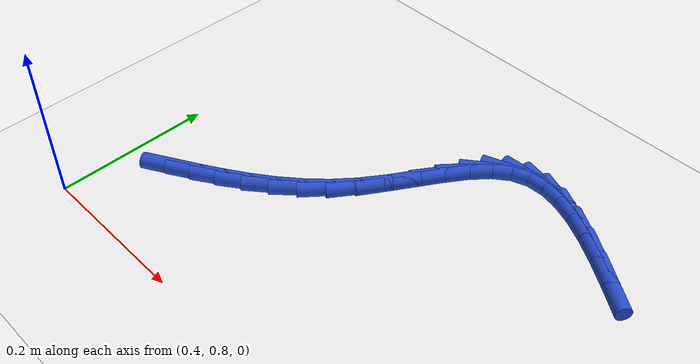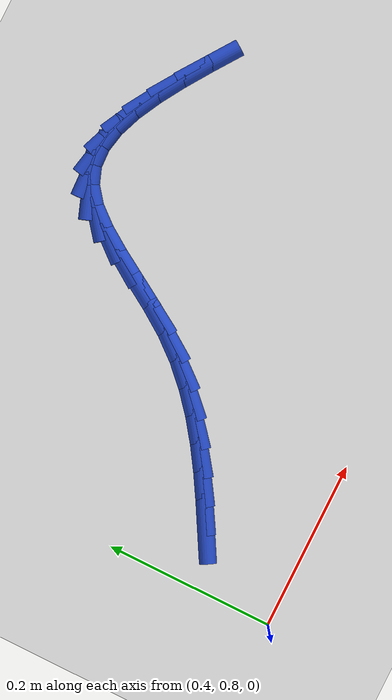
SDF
<sdf version="1.6">
 <world name="default">
  <model name="ground_plane">
   <static>1</static>
   <link name="link">
    <collision name="collision">
     <geometry><plane><normal>0 0 1</normal><size>100 100</size></plane></geometry>
     <surface><friction><ode><mu>100</mu><mu2>50</mu2></ode></friction></surface>
    </collision>
    <visual name="visual">
     <cast_shadows>0</cast_shadows>
     <geometry><plane><normal>0 0 1</normal><size>100 100</size></plane></geometry>
     <material>
      <script><uri>file://media/materials/scripts/gazebo.material</uri><name>Gazebo/WhiteGlow</name></script>
     </material>
    </visual>
   </link>
  </model>
  <model name="line">
   <link name="link_34">
    <pose>0.4671708731064505 0.9121087267726075 0.01 0 1.57 0.5185167637893923</pose>
    <collision name="collision">
     <geometry><cylinder><radius>0.01</radius><length>0.08</length></cylinder></geometry>
    </collision>
    <visual name="visual">
     <material>
      <script><name>Gazebo/Blue</name><uri>file://media/materials/scripts/gazebo.material</uri></script>
     </material>
     <geometry><cylinder><radius>0.01</radius><length>0.08</length></cylinder></geometry>
    </visual>
   </link>
   <link name="link_35">
    <pose>0.4949551758295555 0.9279622837229498 0.01 0 1.57 0.5398705041773794</pose>
    <collision name="collision">
     <geometry><cylinder><radius>0.01</radius><length>0.08</length></cylinder></geometry>
    </collision>
    <visual name="visual">
     <material>
      <script><name>Gazebo/Blue</name><uri>file://media/materials/scripts/gazebo.material</uri></script>
     </material>
     <geometry><cylinder><radius>0.01</radius><length>0.08</length></cylinder></geometry>
    </visual>
   </link>
   <link name="link_36">
    <pose>0.5225662892260076 0.9445083431321827 0.01 0 1.57 0.5771944339568059</pose>
    <collision name="collision">
     <geometry><cylinder><radius>0.01</radius><length>0.08</length></cylinder></geometry>
    </collision>
    <visual name="visual">
     <material>
      <script><name>Gazebo/Blue</name><uri>file://media/materials/scripts/gazebo.material</uri></script>
     </material>
     <geometry><cylinder><radius>0.01</radius><length>0.08</length></cylinder></geometry>
    </visual>
   </link>
   <link name="link_37">
    <pose>0.5496647286598928 0.9621539242473788 0.01 0 1.57 0.6303872662842359</pose>
    <collision name="collision">
     <geometry><cylinder><radius>0.01</radius><length>0.08</length></cylinder></geometry>
    </collision>
    <visual name="visual">
     <material>
      <script><name>Gazebo/Blue</name><uri>file://media/materials/scripts/gazebo.material</uri></script>
     </material>
     <geometry><cylinder><radius>0.01</radius><length>0.08</length></cylinder></geometry>
    </visual>
   </link>
   <link name="link_38">
    <pose>0.5759110094952964 0.9813060463156099 0.01 0 1.57 0.6991226731353587</pose>
    <collision name="collision">
     <geometry><cylinder><radius>0.01</radius><length>0.08</length></cylinder></geometry>
    </collision>
    <visual name="visual">
     <material>
      <script><name>Gazebo/Blue</name><uri>file://media/materials/scripts/gazebo.material</uri></script>
     </material>
     <geometry><cylinder><radius>0.01</radius><length>0.08</length></cylinder></geometry>
    </visual>
   </link>
   <link name="link_39">
    <pose>0.6009656470963051 1.00237172858395 0.01 0 1.57 0.7824723844110075</pose>
    <collision name="collision">
     <geometry><cylinder><radius>0.01</radius><length>0.08</length></cylinder></geometry>
    </collision>
    <visual name="visual">
     <material>
      <script><name>Gazebo/Blue</name><uri>file://media/materials/scripts/gazebo.material</uri></script>
     </material>
     <geometry><cylinder><radius>0.01</radius><length>0.08</length></cylinder></geometry>
    </visual>
   </link>
   <link name="link_40">
    <pose>0.6244891568270039 1.0257579902994698 0.01 0 1.57 0.8784894327376682</pose>
    <collision name="collision">
     <geometry><cylinder><radius>0.01</radius><length>0.08</length></cylinder></geometry>
    </collision>
    <visual name="visual">
     <material>
      <script><name>Gazebo/Blue</name><uri>file://media/materials/scripts/gazebo.material</uri></script>
     </material>
     <geometry><cylinder><radius>0.01</radius><length>0.08</length></cylinder></geometry>
    </visual>
   </link>
   <link name="link_41">
    <pose>0.646142512180271 1.0518708529762404 0.01 0 1.57 0.9693395909488022</pose>
    <collision name="collision">
     <geometry><cylinder><radius>0.01</radius><length>0.08</length></cylinder></geometry>
    </collision>
    <visual name="visual">
     <material>
      <script><name>Gazebo/Blue</name><uri>file://media/materials/scripts/gazebo.material</uri></script>
     </material>
     <geometry><cylinder><radius>0.01</radius><length>0.08</length></cylinder></geometry>
    </visual>
   </link>
   <link name="link_42">
    <pose>0.6658377659725696 1.080569526549648 0.01 0 1.57 1.0180753666438616</pose>
    <collision name="collision">
     <geometry><cylinder><radius>0.01</radius><length>0.08</length></cylinder></geometry>
    </collision>
    <visual name="visual">
     <material>
      <script><name>Gazebo/Blue</name><uri>file://media/materials/scripts/gazebo.material</uri></script>
     </material>
     <geometry><cylinder><radius>0.01</radius><length>0.08</length></cylinder></geometry>
    </visual>
   </link>
   <link name="link_43">
    <pose>0.6841534967865807 1.1102616318666245 0.01 0 1.57 1.0224853365592925</pose>
    <collision name="collision">
     <geometry><cylinder><radius>0.01</radius><length>0.08</length></cylinder></geometry>
    </collision>
    <visual name="visual">
     <material>
      <script><name>Gazebo/Blue</name><uri>file://media/materials/scripts/gazebo.material</uri></script>
     </material>
     <geometry><cylinder><radius>0.01</radius><length>0.08</length></cylinder></geometry>
    </visual>
   </link>
   <link name="link_44">
    <pose>0.7017776478181831 1.139116610716018 0.01 0 1.57 0.9785148167061688</pose>
    <collision name="collision">
     <geometry><cylinder><radius>0.01</radius><length>0.08</length></cylinder></geometry>
    </collision>
    <visual name="visual">
     <material>
      <script><name>Gazebo/Blue</name><uri>file://media/materials/scripts/gazebo.material</uri></script>
     </material>
     <geometry><cylinder><radius>0.01</radius><length>0.08</length></cylinder></geometry>
    </visual>
   </link>
   <link name="link_45">
    <pose>0.7193981622632561 1.1653039048866785 0.01 0 1.57 0.8698157792936966</pose>
    <collision name="collision">
     <geometry><cylinder><radius>0.01</radius><length>0.08</length></cylinder></geometry>
    </collision>
    <visual name="visual">
     <material>
      <script><name>Gazebo/Blue</name><uri>file://media/materials/scripts/gazebo.material</uri></script>
     </material>
     <geometry><cylinder><radius>0.01</radius><length>0.08</length></cylinder></geometry>
    </visual>
   </link>
   <link name="link_46">
    <pose>0.7377029833176794 1.186992956167456 0.01 0 1.57 0.6628381391110635</pose>
    <collision name="collision">
     <geometry><cylinder><radius>0.01</radius><length>0.08</length></cylinder></geometry>
    </collision>
    <visual name="visual">
     <material>
      <script><name>Gazebo/Blue</name><uri>file://media/materials/scripts/gazebo.material</uri></script>
     </material>
     <geometry><cylinder><radius>0.01</radius><length>0.08</length></cylinder></geometry>
    </visual>
   </link>
   <link name="link_47">
    <pose>0.7573798263681768 1.202353932111893 0.01 0 1.57 0.3489873035562371</pose>
    <collision name="collision">
     <geometry><cylinder><radius>0.01</radius><length>0.08</length></cylinder></geometry>
    </collision>
    <visual name="visual">
     <material>
      <script><name>Gazebo/Blue</name><uri>file://media/materials/scripts/gazebo.material</uri></script>
     </material>
     <geometry><cylinder><radius>0.01</radius><length>0.08</length></cylinder></geometry>
    </visual>
   </link>
   <link name="link_48">
    <pose>0.7789173867754706 1.210191047258453 0.01 0 1.57 0.03909313656867497</pose>
    <collision name="collision">
     <geometry><cylinder><radius>0.01</radius><length>0.08</length></cylinder></geometry>
    </collision>
    <visual name="visual">
     <material>
      <script><name>Gazebo/Blue</name><uri>file://media/materials/scripts/gazebo.material</uri></script>
     </material>
     <geometry><cylinder><radius>0.01</radius><length>0.08</length></cylinder></geometry>
    </visual>
   </link>
   <link name="link_49">
    <pose>0.8022409963792325 1.2111033050877587 0.01 0 1.57 -0.2016733695533999</pose>
    <collision name="collision">
     <geometry><cylinder><radius>0.01</radius><length>0.08</length></cylinder></geometry>
    </collision>
    <visual name="visual">
     <material>
      <script><name>Gazebo/Blue</name><uri>file://media/materials/scripts/gazebo.material</uri></script>
     </material>
     <geometry><cylinder><radius>0.01</radius><length>0.08</length></cylinder></geometry>
    </visual>
   </link>
   <link name="link_50">
    <pose>0.827176998672758 1.2060050706238077 0.01 0 1.57 -0.3688318774358598</pose>
    <collision name="collision">
     <geometry><cylinder><radius>0.01</radius><length>0.08</length></cylinder></geometry>
    </collision>
    <visual name="visual">
     <material>
      <script><name>Gazebo/Blue</name><uri>file://media/materials/scripts/gazebo.material</uri></script>
     </material>
     <geometry><cylinder><radius>0.01</radius><length>0.08</length></cylinder></geometry>
    </visual>
   </link>
   <link name="link_51">
    <pose>0.8535517371493413 1.1958107088905978 0.01 0 1.57 -0.4796166435442377</pose>
    <collision name="collision">
     <geometry><cylinder><radius>0.01</radius><length>0.08</length></cylinder></geometry>
    </collision>
    <visual name="visual">
     <material>
      <script><name>Gazebo/Blue</name><uri>file://media/materials/scripts/gazebo.material</uri></script>
     </material>
     <geometry><cylinder><radius>0.01</radius><length>0.08</length></cylinder></geometry>
    </visual>
   </link>
   <link name="link_52">
    <pose>0.8811915553022793 1.1814345849121275 0.01 0 1.57 -0.5507142445711828</pose>
    <collision name="collision">
     <geometry><cylinder><radius>0.01</radius><length>0.08</length></cylinder></geometry>
    </collision>
    <visual name="visual">
     <material>
      <script><name>Gazebo/Blue</name><uri>file://media/materials/scripts/gazebo.material</uri></script>
     </material>
     <geometry><cylinder><radius>0.01</radius><length>0.08</length></cylinder></geometry>
    </visual>
   </link>
   <link name="link_53">
    <pose>0.9099227966248652 1.1637910637123934 0.01 0 1.57 -0.5933666246820535</pose>
    <collision name="collision">
     <geometry><cylinder><radius>0.01</radius><length>0.08</length></cylinder></geometry>
    </collision>
    <visual name="visual">
     <material>
      <script><name>Gazebo/Blue</name><uri>file://media/materials/scripts/gazebo.material</uri></script>
     </material>
     <geometry><cylinder><radius>0.01</radius><length>0.08</length></cylinder></geometry>
    </visual>
   </link>
   <link name="link_54">
    <pose>0.9395718046103957 1.1437945103153937 0.01 0 1.57 -0.614251185983366</pose>
    <collision name="collision">
     <geometry><cylinder><radius>0.01</radius><length>0.08</length></cylinder></geometry>
    </collision>
    <visual name="visual">
     <material>
      <script><name>Gazebo/Blue</name><uri>file://media/materials/scripts/gazebo.material</uri></script>
     </material>
     <geometry><cylinder><radius>0.01</radius><length>0.08</length></cylinder></geometry>
    </visual>
   </link>
  </model>
 </world>
</sdf>
